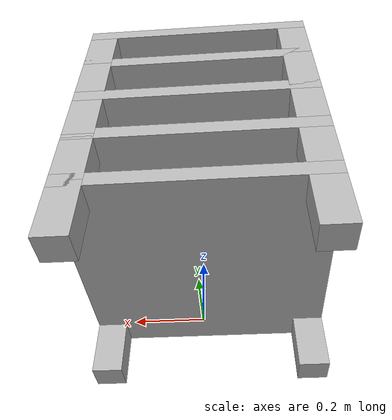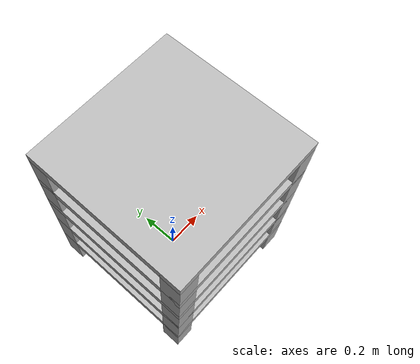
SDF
<?xml version="1.0" ?>
<sdf version="1.6">
<!-- storage unit model -->
		<model name="storage_unit">
			<include>
				<uri>model://shelf</uri>
				<pose>0 0 0 0 0 0</pose>
				<name>shelf_1</name>
			</include>
			<include>
				<uri>model://shelf</uri>
				<pose>0 0 0.2 0 0 0</pose>
				<name>shelf_2</name>
			</include>
			<include>
				<uri>model://shelf</uri>
				<pose>0 0 0.4 0 0 0</pose>
				<name>shelf_3</name>
			</include>
			<include>
				<uri>model://shelf</uri>
				<pose>0 0 0.6 0 0 0</pose>
				<name>shelf_4</name>
			</include>
			<include>
				<uri>model://shelf</uri>
				<pose>0 0 0.8 0 0 0</pose>
				<name>shelf_5</name>
			</include>
			<joint type="fixed" name="shelf_1_joint">
        			<pose>0 0 0.2 0 0 0</pose>
        			<child>shelf_2::body</child>
        			<parent>shelf_1::body</parent>
                	</joint>
			<joint type="fixed" name="shelf_2_joint">
        			<pose>0 0 0.4 0 0 0</pose>
        			<child>shelf_3::body</child>
        			<parent>shelf_2::body</parent>
                	</joint>
			<joint type="fixed" name="shelf_3_joint">
        			<pose>0 0 0.6 0 0 0</pose>
        			<child>shelf_4::body</child>
        			<parent>shelf_3::body</parent>
                	</joint>
			<joint type="fixed" name="shelf_4_joint">
        			<pose>0 0 0.8 0 0 0</pose>
        			<child>shelf_5::body</child>
        			<parent>shelf_4::body</parent>
                	</joint>
		</model>
</sdf>

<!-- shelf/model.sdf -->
<sdf version="1.6">
<!-- shelf model -->
		<model name="shelf">
			<link name='body'>
           		<pose>0 0 0.2 0 0 0</pose>
		        <collision name='collision'>
		         	<geometry>
		           		<box>
		              		<size>.8 .8 .05</size>
		            		</box>
		          	</geometry>
		        	</collision>

		        <visual name='visual'>
		        		<geometry>
		            		<box>
		              		<size>.8 .8 .05</size>
		            		</box>
		          	</geometry>
		        </visual>
			</link>
			<link name="leg_1">
            <pose>0.35 0.35 0.1 0 0 0</pose>
		        <collision name='collision'>
		         	<geometry>
		           		<box>
		              		<size>.1 .1 0.20</size>
		            		</box>
		          	</geometry>
		        	</collision>
		        <visual name='visual'>
		        		<geometry>
		            		<box>
		              		<size>.1 .1 0.20</size>
		            		</box>
		          	</geometry>
		        </visual>
			</link>
            <link name="leg_2">
            <pose>-0.35 0.35 0.1 0 0 0</pose>
		        <collision name='collision'>
		         	<geometry>
		           		<box>
		              		<size>.1 .1 0.20</size>
		            		</box>
		          	</geometry>
		        	</collision>

		        <visual name='visual'>
		        		<geometry>
		            		<box>
		              		<size>.1 .1 0.20</size>
		            		</box>
		          	</geometry>
		        </visual>
			</link>
            <link name="leg_3">
            <pose>0.35 -0.35 0.1 0 0 0</pose>
		        <collision name='collision'>
		         	<geometry>
		           		<box>
		              		<size>.1 .1 0.20</size>
		            		</box>
		          	</geometry>
		        	</collision>
		        <visual name='visual'>
		        		<geometry>
		            		<box>
		              		<size>.1 .1 0.20</size>
		            		</box>
		          	</geometry>
		        </visual>
			</link>
            <link name="leg_4">
            <pose>-0.35 -0.35 0.1 0 0 0</pose>
		        <collision name='collision'>
		         	<geometry>
		           		<box>
		              		<size>.1 .1 0.20</size>
		            		</box>
		          	</geometry>
		        	</collision>
		        <visual name='visual'>
		        		<geometry>
		            		<box>
		              		<size>.1 .1 0.20</size>
		            		</box>
		          	</geometry>
		        </visual>
			</link>
            <joint type="fixed" name="leg_1_joint">
        			<pose>0 0 0 0 0 0</pose>
        			<child>leg_1</child>
        			<parent>body</parent>
                </joint>
                <joint type="fixed" name="leg_2_joint">
        			<pose>0 0 0 0 0 0</pose>
        			<child>leg_2</child>
        			<parent>body</parent>
                </joint>
                <joint type="fixed" name="leg_3_joint">
        			<pose>0 0 0 0 0 0</pose>
        			<child>leg_3</child>
        			<parent>body</parent>
                </joint>
                <joint type="fixed" name="leg_4_joint">
        			<pose>0 0 0 0 0 0</pose>
        			<child>leg_4</child>
        			<parent>body</parent>
                </joint>
</model>

</sdf>
